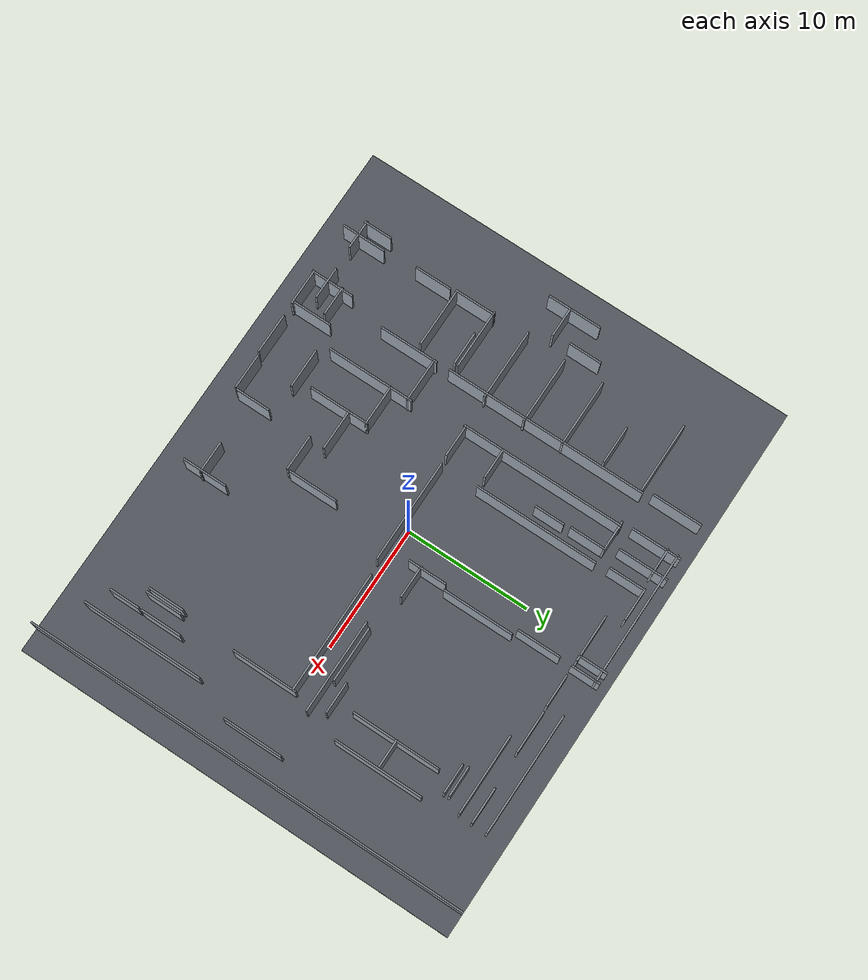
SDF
<?xml version="1.0"?>
<!-- Clean abstract wall model generated from the cleaned structural raster. -->
<sdf version="1.9">
  <world name="qianli_bupt_shahe_public_teaching_floor1_clean_abstract_v0_2">
    <physics name="default" type="ignored"><max_step_size>0.005</max_step_size><real_time_factor>1.0</real_time_factor></physics>
    <gravity>0 0 -9.81</gravity>
    <plugin filename="gz-sim-physics-system" name="gz::sim::systems::Physics" />
    <plugin filename="gz-sim-user-commands-system" name="gz::sim::systems::UserCommands" />
    <plugin filename="gz-sim-scene-broadcaster-system" name="gz::sim::systems::SceneBroadcaster" />
    <plugin filename="gz-sim-sensors-system" name="gz::sim::systems::Sensors"><render_engine>ogre2</render_engine></plugin>
    <scene><ambient>0.75 0.75 0.75 1</ambient><background>0.12 0.14 0.17 1</background></scene>
    <light name="sun" type="directional"><pose>0 0 8 0 0 0</pose><diffuse>0.8 0.8 0.8 1</diffuse><direction>-0.3 -0.3 -1</direction></light>
    <model name="floor">
      <static>true</static>
      <pose>0 0 -0.05 0 0 0</pose>
      <link name="link">
        <collision name="collision"><geometry><box><size>44.400 35.900 0.1</size></box></geometry></collision>
        <visual name="visual"><geometry><box><size>44.400 35.900 0.1</size></box></geometry>
          <material><ambient>0.35 0.37 0.40 1</ambient><diffuse>0.35 0.37 0.40 1</diffuse></material>
        </visual>
      </link>
    </model>
    <model name="wall_000">
      <static>true</static>
      <pose>20.300 0.010 1.400 0 0 1.570796</pose>
      <link name="link">
        <collision name="collision"><geometry><box><size>35.880 0.140 2.800</size></box></geometry></collision>
        <visual name="visual"><geometry><box><size>35.880 0.140 2.800</size></box></geometry>
          <material><ambient>0.55 0.58 0.62 1</ambient><diffuse>0.55 0.58 0.62 1</diffuse></material>
        </visual>
      </link>
    </model>
    <model name="wall_001">
      <static>true</static>
      <pose>-10.910 4.310 1.400 0 0 1.570796</pose>
      <link name="link">
        <collision name="collision"><geometry><box><size>16.280 0.140 2.800</size></box></geometry></collision>
        <visual name="visual"><geometry><box><size>16.280 0.140 2.800</size></box></geometry>
          <material><ambient>0.55 0.58 0.62 1</ambient><diffuse>0.55 0.58 0.62 1</diffuse></material>
        </visual>
      </link>
    </model>
    <model name="wall_002">
      <static>true</static>
      <pose>-8.090 5.890 1.400 0 0 1.570796</pose>
      <link name="link">
        <collision name="collision"><geometry><box><size>13.200 0.140 2.800</size></box></geometry></collision>
        <visual name="visual"><geometry><box><size>13.200 0.140 2.800</size></box></geometry>
          <material><ambient>0.55 0.58 0.62 1</ambient><diffuse>0.55 0.58 0.62 1</diffuse></material>
        </visual>
      </link>
    </model>
    <model name="wall_003">
      <static>true</static>
      <pose>-3.170 16.890 1.400 0 0 0.000000</pose>
      <link name="link">
        <collision name="collision"><geometry><box><size>10.740 0.140 2.800</size></box></geometry></collision>
        <visual name="visual"><geometry><box><size>10.740 0.140 2.800</size></box></geometry>
          <material><ambient>0.55 0.58 0.62 1</ambient><diffuse>0.55 0.58 0.62 1</diffuse></material>
        </visual>
      </link>
    </model>
    <model name="wall_004">
      <static>true</static>
      <pose>-4.890 7.460 1.400 0 0 1.570796</pose>
      <link name="link">
        <collision name="collision"><geometry><box><size>9.900 0.140 2.800</size></box></geometry></collision>
        <visual name="visual"><geometry><box><size>9.900 0.140 2.800</size></box></geometry>
          <material><ambient>0.55 0.58 0.62 1</ambient><diffuse>0.55 0.58 0.62 1</diffuse></material>
        </visual>
      </link>
    </model>
    <model name="wall_005">
      <static>true</static>
      <pose>9.340 -0.170 1.400 0 0 0.000000</pose>
      <link name="link">
        <collision name="collision"><geometry><box><size>9.800 0.140 2.800</size></box></geometry></collision>
        <visual name="visual"><geometry><box><size>9.800 0.140 2.800</size></box></geometry>
          <material><ambient>0.55 0.58 0.62 1</ambient><diffuse>0.55 0.58 0.62 1</diffuse></material>
        </visual>
      </link>
    </model>
    <model name="wall_006">
      <static>true</static>
      <pose>17.070 -10.820 1.400 0 0 1.570796</pose>
      <link name="link">
        <collision name="collision"><geometry><box><size>9.740 0.140 2.800</size></box></geometry></collision>
        <visual name="visual"><geometry><box><size>9.740 0.140 2.800</size></box></geometry>
          <material><ambient>0.55 0.58 0.62 1</ambient><diffuse>0.55 0.58 0.62 1</diffuse></material>
        </visual>
      </link>
    </model>
    <model name="wall_007">
      <static>true</static>
      <pose>10.150 16.330 1.400 0 0 0.000000</pose>
      <link name="link">
        <collision name="collision"><geometry><box><size>9.620 0.140 2.800</size></box></geometry></collision>
        <visual name="visual"><geometry><box><size>9.620 0.140 2.800</size></box></geometry>
          <material><ambient>0.55 0.58 0.62 1</ambient><diffuse>0.55 0.58 0.62 1</diffuse></material>
        </visual>
      </link>
    </model>
    <model name="wall_008">
      <static>true</static>
      <pose>-0.780 -0.470 1.400 0 0 0.000000</pose>
      <link name="link">
        <collision name="collision"><geometry><box><size>8.240 0.140 2.800</size></box></geometry></collision>
        <visual name="visual"><geometry><box><size>8.240 0.140 2.800</size></box></geometry>
          <material><ambient>0.55 0.58 0.62 1</ambient><diffuse>0.55 0.58 0.62 1</diffuse></material>
        </visual>
      </link>
    </model>
    <model name="wall_009">
      <static>true</static>
      <pose>11.140 1.430 1.400 0 0 0.000000</pose>
      <link name="link">
        <collision name="collision"><geometry><box><size>7.480 0.140 2.800</size></box></geometry></collision>
        <visual name="visual"><geometry><box><size>7.480 0.140 2.800</size></box></geometry>
          <material><ambient>0.55 0.58 0.62 1</ambient><diffuse>0.55 0.58 0.62 1</diffuse></material>
        </visual>
      </link>
    </model>
    <model name="wall_010">
      <static>true</static>
      <pose>15.400 7.730 1.400 0 0 1.570796</pose>
      <link name="link">
        <collision name="collision"><geometry><box><size>7.160 0.140 2.800</size></box></geometry></collision>
        <visual name="visual"><geometry><box><size>7.160 0.140 2.800</size></box></geometry>
          <material><ambient>0.55 0.58 0.62 1</ambient><diffuse>0.55 0.58 0.62 1</diffuse></material>
        </visual>
      </link>
    </model>
    <model name="wall_011">
      <static>true</static>
      <pose>13.140 7.700 1.400 0 0 1.570796</pose>
      <link name="link">
        <collision name="collision"><geometry><box><size>7.100 0.140 2.800</size></box></geometry></collision>
        <visual name="visual"><geometry><box><size>7.100 0.140 2.800</size></box></geometry>
          <material><ambient>0.55 0.58 0.62 1</ambient><diffuse>0.55 0.58 0.62 1</diffuse></material>
        </visual>
      </link>
    </model>
    <model name="wall_012">
      <static>true</static>
      <pose>-7.500 -8.240 1.400 0 0 1.570796</pose>
      <link name="link">
        <collision name="collision"><geometry><box><size>6.980 0.140 2.800</size></box></geometry></collision>
        <visual name="visual"><geometry><box><size>6.980 0.140 2.800</size></box></geometry>
          <material><ambient>0.55 0.58 0.62 1</ambient><diffuse>0.55 0.58 0.62 1</diffuse></material>
        </visual>
      </link>
    </model>
    <model name="wall_013">
      <static>true</static>
      <pose>11.700 14.040 1.400 0 0 0.000000</pose>
      <link name="link">
        <collision name="collision"><geometry><box><size>6.440 0.140 2.800</size></box></geometry></collision>
        <visual name="visual"><geometry><box><size>6.440 0.140 2.800</size></box></geometry>
          <material><ambient>0.55 0.58 0.62 1</ambient><diffuse>0.55 0.58 0.62 1</diffuse></material>
        </visual>
      </link>
    </model>
    <model name="wall_014">
      <static>true</static>
      <pose>-13.470 -0.640 1.400 0 0 0.000000</pose>
      <link name="link">
        <collision name="collision"><geometry><box><size>5.740 0.140 2.800</size></box></geometry></collision>
        <visual name="visual"><geometry><box><size>5.740 0.140 2.800</size></box></geometry>
          <material><ambient>0.55 0.58 0.62 1</ambient><diffuse>0.55 0.58 0.62 1</diffuse></material>
        </visual>
      </link>
    </model>
    <model name="wall_015">
      <static>true</static>
      <pose>2.560 7.480 1.400 0 0 1.570796</pose>
      <link name="link">
        <collision name="collision"><geometry><box><size>5.700 0.140 2.800</size></box></geometry></collision>
        <visual name="visual"><geometry><box><size>5.700 0.140 2.800</size></box></geometry>
          <material><ambient>0.55 0.58 0.62 1</ambient><diffuse>0.55 0.58 0.62 1</diffuse></material>
        </visual>
      </link>
    </model>
    <model name="wall_016">
      <static>true</static>
      <pose>-13.840 12.260 1.400 0 0 0.000000</pose>
      <link name="link">
        <collision name="collision"><geometry><box><size>5.640 0.140 2.800</size></box></geometry></collision>
        <visual name="visual"><geometry><box><size>5.640 0.140 2.800</size></box></geometry>
          <material><ambient>0.55 0.58 0.62 1</ambient><diffuse>0.55 0.58 0.62 1</diffuse></material>
        </visual>
      </link>
    </model>
    <model name="wall_017">
      <static>true</static>
      <pose>-13.360 2.630 1.400 0 0 0.000000</pose>
      <link name="link">
        <collision name="collision"><geometry><box><size>5.360 0.140 2.800</size></box></geometry></collision>
        <visual name="visual"><geometry><box><size>5.360 0.140 2.800</size></box></geometry>
          <material><ambient>0.55 0.58 0.62 1</ambient><diffuse>0.55 0.58 0.62 1</diffuse></material>
        </visual>
      </link>
    </model>
    <model name="wall_018">
      <static>true</static>
      <pose>-13.470 5.790 1.400 0 0 0.000000</pose>
      <link name="link">
        <collision name="collision"><geometry><box><size>5.340 0.140 2.800</size></box></geometry></collision>
        <visual name="visual"><geometry><box><size>5.340 0.140 2.800</size></box></geometry>
          <material><ambient>0.55 0.58 0.62 1</ambient><diffuse>0.55 0.58 0.62 1</diffuse></material>
        </visual>
      </link>
    </model>
    <model name="wall_019">
      <static>true</static>
      <pose>14.170 -2.530 1.400 0 0 1.570796</pose>
      <link name="link">
        <collision name="collision"><geometry><box><size>5.240 0.140 2.800</size></box></geometry></collision>
        <visual name="visual"><geometry><box><size>5.240 0.140 2.800</size></box></geometry>
          <material><ambient>0.55 0.58 0.62 1</ambient><diffuse>0.55 0.58 0.62 1</diffuse></material>
        </visual>
      </link>
    </model>
    <model name="wall_020">
      <static>true</static>
      <pose>-13.850 -3.470 1.400 0 0 0.000000</pose>
      <link name="link">
        <collision name="collision"><geometry><box><size>4.860 0.140 2.800</size></box></geometry></collision>
        <visual name="visual"><geometry><box><size>4.860 0.140 2.800</size></box></geometry>
          <material><ambient>0.55 0.58 0.62 1</ambient><diffuse>0.55 0.58 0.62 1</diffuse></material>
        </visual>
      </link>
    </model>
    <model name="wall_021">
      <static>true</static>
      <pose>-4.390 -8.850 1.400 0 0 1.570796</pose>
      <link name="link">
        <collision name="collision"><geometry><box><size>4.840 0.140 2.800</size></box></geometry></collision>
        <visual name="visual"><geometry><box><size>4.840 0.140 2.800</size></box></geometry>
          <material><ambient>0.55 0.58 0.62 1</ambient><diffuse>0.55 0.58 0.62 1</diffuse></material>
        </visual>
      </link>
    </model>
    <model name="wall_022">
      <static>true</static>
      <pose>18.410 -0.630 1.400 0 0 1.570796</pose>
      <link name="link">
        <collision name="collision"><geometry><box><size>4.800 0.140 2.800</size></box></geometry></collision>
        <visual name="visual"><geometry><box><size>4.800 0.140 2.800</size></box></geometry>
          <material><ambient>0.55 0.58 0.62 1</ambient><diffuse>0.55 0.58 0.62 1</diffuse></material>
        </visual>
      </link>
    </model>
    <model name="wall_023">
      <static>true</static>
      <pose>-13.720 -6.570 1.400 0 0 0.000000</pose>
      <link name="link">
        <collision name="collision"><geometry><box><size>4.760 0.140 2.800</size></box></geometry></collision>
        <visual name="visual"><geometry><box><size>4.760 0.140 2.800</size></box></geometry>
          <material><ambient>0.55 0.58 0.62 1</ambient><diffuse>0.55 0.58 0.62 1</diffuse></material>
        </visual>
      </link>
    </model>
    <model name="wall_024">
      <static>true</static>
      <pose>-10.850 -7.210 1.400 0 0 1.570796</pose>
      <link name="link">
        <collision name="collision"><geometry><box><size>4.760 0.140 2.800</size></box></geometry></collision>
        <visual name="visual"><geometry><box><size>4.760 0.140 2.800</size></box></geometry>
          <material><ambient>0.55 0.58 0.62 1</ambient><diffuse>0.55 0.58 0.62 1</diffuse></material>
        </visual>
      </link>
    </model>
    <model name="wall_025">
      <static>true</static>
      <pose>9.870 1.820 1.400 0 0 0.000000</pose>
      <link name="link">
        <collision name="collision"><geometry><box><size>4.420 0.140 2.800</size></box></geometry></collision>
        <visual name="visual"><geometry><box><size>4.420 0.140 2.800</size></box></geometry>
          <material><ambient>0.55 0.58 0.62 1</ambient><diffuse>0.55 0.58 0.62 1</diffuse></material>
        </visual>
      </link>
    </model>
    <model name="wall_026">
      <static>true</static>
      <pose>-19.440 1.290 1.400 0 0 1.570796</pose>
      <link name="link">
        <collision name="collision"><geometry><box><size>4.360 0.140 2.800</size></box></geometry></collision>
        <visual name="visual"><geometry><box><size>4.360 0.140 2.800</size></box></geometry>
          <material><ambient>0.55 0.58 0.62 1</ambient><diffuse>0.55 0.58 0.62 1</diffuse></material>
        </visual>
      </link>
    </model>
    <model name="wall_027">
      <static>true</static>
      <pose>-11.240 15.110 1.400 0 0 1.570796</pose>
      <link name="link">
        <collision name="collision"><geometry><box><size>4.040 0.140 2.800</size></box></geometry></collision>
        <visual name="visual"><geometry><box><size>4.040 0.140 2.800</size></box></geometry>
          <material><ambient>0.55 0.58 0.62 1</ambient><diffuse>0.55 0.58 0.62 1</diffuse></material>
        </visual>
      </link>
    </model>
    <model name="wall_028">
      <static>true</static>
      <pose>-6.630 15.210 1.400 0 0 1.570796</pose>
      <link name="link">
        <collision name="collision"><geometry><box><size>4.000 0.140 2.800</size></box></geometry></collision>
        <visual name="visual"><geometry><box><size>4.000 0.140 2.800</size></box></geometry>
          <material><ambient>0.55 0.58 0.62 1</ambient><diffuse>0.55 0.58 0.62 1</diffuse></material>
        </visual>
      </link>
    </model>
    <model name="wall_029">
      <static>true</static>
      <pose>-8.370 15.190 1.400 0 0 1.570796</pose>
      <link name="link">
        <collision name="collision"><geometry><box><size>3.960 0.140 2.800</size></box></geometry></collision>
        <visual name="visual"><geometry><box><size>3.960 0.140 2.800</size></box></geometry>
          <material><ambient>0.55 0.58 0.62 1</ambient><diffuse>0.55 0.58 0.62 1</diffuse></material>
        </visual>
      </link>
    </model>
    <model name="wall_030">
      <static>true</static>
      <pose>1.480 -7.110 1.400 0 0 1.570796</pose>
      <link name="link">
        <collision name="collision"><geometry><box><size>3.960 0.140 2.800</size></box></geometry></collision>
        <visual name="visual"><geometry><box><size>3.960 0.140 2.800</size></box></geometry>
          <material><ambient>0.55 0.58 0.62 1</ambient><diffuse>0.55 0.58 0.62 1</diffuse></material>
        </visual>
      </link>
    </model>
    <model name="wall_031">
      <static>true</static>
      <pose>-0.240 15.010 1.400 0 0 0.000000</pose>
      <link name="link">
        <collision name="collision"><geometry><box><size>3.760 0.140 2.800</size></box></geometry></collision>
        <visual name="visual"><geometry><box><size>3.760 0.140 2.800</size></box></geometry>
          <material><ambient>0.55 0.58 0.62 1</ambient><diffuse>0.55 0.58 0.62 1</diffuse></material>
        </visual>
      </link>
    </model>
    <model name="wall_032">
      <static>true</static>
      <pose>4.880 -14.000 1.400 0 0 1.570796</pose>
      <link name="link">
        <collision name="collision"><geometry><box><size>3.620 0.140 2.800</size></box></geometry></collision>
        <visual name="visual"><geometry><box><size>3.620 0.140 2.800</size></box></geometry>
          <material><ambient>0.55 0.58 0.62 1</ambient><diffuse>0.55 0.58 0.62 1</diffuse></material>
        </visual>
      </link>
    </model>
    <model name="wall_033">
      <static>true</static>
      <pose>-9.160 -5.080 1.400 0 0 0.000000</pose>
      <link name="link">
        <collision name="collision"><geometry><box><size>3.600 0.140 2.800</size></box></geometry></collision>
        <visual name="visual"><geometry><box><size>3.600 0.140 2.800</size></box></geometry>
          <material><ambient>0.55 0.58 0.62 1</ambient><diffuse>0.55 0.58 0.62 1</diffuse></material>
        </visual>
      </link>
    </model>
    <model name="wall_034">
      <static>true</static>
      <pose>-15.700 -14.340 1.400 0 0 1.570796</pose>
      <link name="link">
        <collision name="collision"><geometry><box><size>3.540 0.140 2.800</size></box></geometry></collision>
        <visual name="visual"><geometry><box><size>3.540 0.140 2.800</size></box></geometry>
          <material><ambient>0.55 0.58 0.62 1</ambient><diffuse>0.55 0.58 0.62 1</diffuse></material>
        </visual>
      </link>
    </model>
    <model name="wall_035">
      <static>true</static>
      <pose>2.070 12.190 1.400 0 0 1.570796</pose>
      <link name="link">
        <collision name="collision"><geometry><box><size>3.520 0.140 2.800</size></box></geometry></collision>
        <visual name="visual"><geometry><box><size>3.520 0.140 2.800</size></box></geometry>
          <material><ambient>0.55 0.58 0.62 1</ambient><diffuse>0.55 0.58 0.62 1</diffuse></material>
        </visual>
      </link>
    </model>
    <model name="wall_036">
      <static>true</static>
      <pose>-11.610 -14.310 1.400 0 0 1.570796</pose>
      <link name="link">
        <collision name="collision"><geometry><box><size>3.480 0.140 2.800</size></box></geometry></collision>
        <visual name="visual"><geometry><box><size>3.480 0.140 2.800</size></box></geometry>
          <material><ambient>0.55 0.58 0.62 1</ambient><diffuse>0.55 0.58 0.62 1</diffuse></material>
        </visual>
      </link>
    </model>
    <model name="wall_037">
      <static>true</static>
      <pose>7.530 15.040 1.400 0 0 0.000000</pose>
      <link name="link">
        <collision name="collision"><geometry><box><size>3.380 0.140 2.800</size></box></geometry></collision>
        <visual name="visual"><geometry><box><size>3.380 0.140 2.800</size></box></geometry>
          <material><ambient>0.55 0.58 0.62 1</ambient><diffuse>0.55 0.58 0.62 1</diffuse></material>
        </visual>
      </link>
    </model>
    <model name="wall_038">
      <static>true</static>
      <pose>-2.830 -8.010 1.400 0 0 0.000000</pose>
      <link name="link">
        <collision name="collision"><geometry><box><size>3.300 0.140 2.800</size></box></geometry></collision>
        <visual name="visual"><geometry><box><size>3.300 0.140 2.800</size></box></geometry>
          <material><ambient>0.55 0.58 0.62 1</ambient><diffuse>0.55 0.58 0.62 1</diffuse></material>
        </visual>
      </link>
    </model>
    <model name="wall_039">
      <static>true</static>
      <pose>-16.080 -5.020 1.400 0 0 1.570796</pose>
      <link name="link">
        <collision name="collision"><geometry><box><size>3.300 0.140 2.800</size></box></geometry></collision>
        <visual name="visual"><geometry><box><size>3.300 0.140 2.800</size></box></geometry>
          <material><ambient>0.55 0.58 0.62 1</ambient><diffuse>0.55 0.58 0.62 1</diffuse></material>
        </visual>
      </link>
    </model>
    <model name="wall_040">
      <static>true</static>
      <pose>-5.960 -6.550 1.400 0 0 0.000000</pose>
      <link name="link">
        <collision name="collision"><geometry><box><size>3.280 0.140 2.800</size></box></geometry></collision>
        <visual name="visual"><geometry><box><size>3.280 0.140 2.800</size></box></geometry>
          <material><ambient>0.55 0.58 0.62 1</ambient><diffuse>0.55 0.58 0.62 1</diffuse></material>
        </visual>
      </link>
    </model>
    <model name="wall_041">
      <static>true</static>
      <pose>15.370 -10.410 1.400 0 0 1.570796</pose>
      <link name="link">
        <collision name="collision"><geometry><box><size>3.280 0.140 2.800</size></box></geometry></collision>
        <visual name="visual"><geometry><box><size>3.280 0.140 2.800</size></box></geometry>
          <material><ambient>0.55 0.58 0.62 1</ambient><diffuse>0.55 0.58 0.62 1</diffuse></material>
        </visual>
      </link>
    </model>
    <model name="wall_042">
      <static>true</static>
      <pose>-6.110 -15.840 1.400 0 0 0.000000</pose>
      <link name="link">
        <collision name="collision"><geometry><box><size>3.260 0.140 2.800</size></box></geometry></collision>
        <visual name="visual"><geometry><box><size>3.260 0.140 2.800</size></box></geometry>
          <material><ambient>0.55 0.58 0.62 1</ambient><diffuse>0.55 0.58 0.62 1</diffuse></material>
        </visual>
      </link>
    </model>
    <model name="wall_043">
      <static>true</static>
      <pose>-5.260 -12.470 1.400 0 0 0.000000</pose>
      <link name="link">
        <collision name="collision"><geometry><box><size>3.160 0.140 2.800</size></box></geometry></collision>
        <visual name="visual"><geometry><box><size>3.160 0.140 2.800</size></box></geometry>
          <material><ambient>0.55 0.58 0.62 1</ambient><diffuse>0.55 0.58 0.62 1</diffuse></material>
        </visual>
      </link>
    </model>
    <model name="wall_044">
      <static>true</static>
      <pose>-8.960 -14.260 1.400 0 0 1.570796</pose>
      <link name="link">
        <collision name="collision"><geometry><box><size>3.100 0.140 2.800</size></box></geometry></collision>
        <visual name="visual"><geometry><box><size>3.100 0.140 2.800</size></box></geometry>
          <material><ambient>0.55 0.58 0.62 1</ambient><diffuse>0.55 0.58 0.62 1</diffuse></material>
        </visual>
      </link>
    </model>
    <model name="wall_045">
      <static>true</static>
      <pose>2.160 2.990 1.400 0 0 1.570796</pose>
      <link name="link">
        <collision name="collision"><geometry><box><size>3.080 0.140 2.800</size></box></geometry></collision>
        <visual name="visual"><geometry><box><size>3.080 0.140 2.800</size></box></geometry>
          <material><ambient>0.55 0.58 0.62 1</ambient><diffuse>0.55 0.58 0.62 1</diffuse></material>
        </visual>
      </link>
    </model>
    <model name="wall_046">
      <static>true</static>
      <pose>-12.800 8.960 1.400 0 0 0.000000</pose>
      <link name="link">
        <collision name="collision"><geometry><box><size>3.000 0.140 2.800</size></box></geometry></collision>
        <visual name="visual"><geometry><box><size>3.000 0.140 2.800</size></box></geometry>
          <material><ambient>0.55 0.58 0.62 1</ambient><diffuse>0.55 0.58 0.62 1</diffuse></material>
        </visual>
      </link>
    </model>
    <model name="wall_047">
      <static>true</static>
      <pose>-15.950 -8.510 1.400 0 0 1.570796</pose>
      <link name="link">
        <collision name="collision"><geometry><box><size>2.960 0.140 2.800</size></box></geometry></collision>
        <visual name="visual"><geometry><box><size>2.960 0.140 2.800</size></box></geometry>
          <material><ambient>0.55 0.58 0.62 1</ambient><diffuse>0.55 0.58 0.62 1</diffuse></material>
        </visual>
      </link>
    </model>
    <model name="wall_048">
      <static>true</static>
      <pose>-10.220 -15.910 1.400 0 0 0.000000</pose>
      <link name="link">
        <collision name="collision"><geometry><box><size>2.920 0.140 2.800</size></box></geometry></collision>
        <visual name="visual"><geometry><box><size>2.920 0.140 2.800</size></box></geometry>
          <material><ambient>0.55 0.58 0.62 1</ambient><diffuse>0.55 0.58 0.62 1</diffuse></material>
        </visual>
      </link>
    </model>
    <model name="wall_049">
      <static>true</static>
      <pose>13.510 15.120 1.400 0 0 0.000000</pose>
      <link name="link">
        <collision name="collision"><geometry><box><size>2.900 0.140 2.800</size></box></geometry></collision>
        <visual name="visual"><geometry><box><size>2.900 0.140 2.800</size></box></geometry>
          <material><ambient>0.55 0.58 0.62 1</ambient><diffuse>0.55 0.58 0.62 1</diffuse></material>
        </visual>
      </link>
    </model>
    <model name="wall_050">
      <static>true</static>
      <pose>14.110 -11.060 1.400 0 0 1.570796</pose>
      <link name="link">
        <collision name="collision"><geometry><box><size>2.900 0.140 2.800</size></box></geometry></collision>
        <visual name="visual"><geometry><box><size>2.900 0.140 2.800</size></box></geometry>
          <material><ambient>0.55 0.58 0.62 1</ambient><diffuse>0.55 0.58 0.62 1</diffuse></material>
        </visual>
      </link>
    </model>
    <model name="wall_051">
      <static>true</static>
      <pose>13.790 -11.070 1.400 0 0 1.570796</pose>
      <link name="link">
        <collision name="collision"><geometry><box><size>2.880 0.140 2.800</size></box></geometry></collision>
        <visual name="visual"><geometry><box><size>2.880 0.140 2.800</size></box></geometry>
          <material><ambient>0.55 0.58 0.62 1</ambient><diffuse>0.55 0.58 0.62 1</diffuse></material>
        </visual>
      </link>
    </model>
    <model name="wall_052">
      <static>true</static>
      <pose>0.030 -9.300 1.400 0 0 0.000000</pose>
      <link name="link">
        <collision name="collision"><geometry><box><size>2.860 0.140 2.800</size></box></geometry></collision>
        <visual name="visual"><geometry><box><size>2.860 0.140 2.800</size></box></geometry>
          <material><ambient>0.55 0.58 0.62 1</ambient><diffuse>0.55 0.58 0.62 1</diffuse></material>
        </visual>
      </link>
    </model>
    <model name="wall_053">
      <static>true</static>
      <pose>-2.850 -15.700 1.400 0 0 0.000000</pose>
      <link name="link">
        <collision name="collision"><geometry><box><size>2.860 0.140 2.800</size></box></geometry></collision>
        <visual name="visual"><geometry><box><size>2.860 0.140 2.800</size></box></geometry>
          <material><ambient>0.55 0.58 0.62 1</ambient><diffuse>0.55 0.58 0.62 1</diffuse></material>
        </visual>
      </link>
    </model>
    <model name="wall_054">
      <static>true</static>
      <pose>-6.060 10.980 1.400 0 0 1.570796</pose>
      <link name="link">
        <collision name="collision"><geometry><box><size>2.860 0.140 2.800</size></box></geometry></collision>
        <visual name="visual"><geometry><box><size>2.860 0.140 2.800</size></box></geometry>
          <material><ambient>0.55 0.58 0.62 1</ambient><diffuse>0.55 0.58 0.62 1</diffuse></material>
        </visual>
      </link>
    </model>
    <model name="wall_055">
      <static>true</static>
      <pose>-5.140 14.790 1.400 0 0 1.570796</pose>
      <link name="link">
        <collision name="collision"><geometry><box><size>2.840 0.140 2.800</size></box></geometry></collision>
        <visual name="visual"><geometry><box><size>2.840 0.140 2.800</size></box></geometry>
          <material><ambient>0.55 0.58 0.62 1</ambient><diffuse>0.55 0.58 0.62 1</diffuse></material>
        </visual>
      </link>
    </model>
    <model name="wall_056">
      <static>true</static>
      <pose>-1.360 -14.160 1.400 0 0 1.570796</pose>
      <link name="link">
        <collision name="collision"><geometry><box><size>2.780 0.140 2.800</size></box></geometry></collision>
        <visual name="visual"><geometry><box><size>2.780 0.140 2.800</size></box></geometry>
          <material><ambient>0.55 0.58 0.62 1</ambient><diffuse>0.55 0.58 0.62 1</diffuse></material>
        </visual>
      </link>
    </model>
    <model name="wall_057">
      <static>true</static>
      <pose>-12.830 -3.770 1.400 0 0 0.000000</pose>
      <link name="link">
        <collision name="collision"><geometry><box><size>2.660 0.140 2.800</size></box></geometry></collision>
        <visual name="visual"><geometry><box><size>2.660 0.140 2.800</size></box></geometry>
          <material><ambient>0.55 0.58 0.62 1</ambient><diffuse>0.55 0.58 0.62 1</diffuse></material>
        </visual>
      </link>
    </model>
    <model name="wall_058">
      <static>true</static>
      <pose>3.340 2.420 1.400 0 0 0.000000</pose>
      <link name="link">
        <collision name="collision"><geometry><box><size>2.640 0.140 2.800</size></box></geometry></collision>
        <visual name="visual"><geometry><box><size>2.640 0.140 2.800</size></box></geometry>
          <material><ambient>0.55 0.58 0.62 1</ambient><diffuse>0.55 0.58 0.62 1</diffuse></material>
        </visual>
      </link>
    </model>
    <model name="wall_059">
      <static>true</static>
      <pose>-17.270 3.570 1.400 0 0 1.570796</pose>
      <link name="link">
        <collision name="collision"><geometry><box><size>2.640 0.140 2.800</size></box></geometry></collision>
        <visual name="visual"><geometry><box><size>2.640 0.140 2.800</size></box></geometry>
          <material><ambient>0.55 0.58 0.62 1</ambient><diffuse>0.55 0.58 0.62 1</diffuse></material>
        </visual>
      </link>
    </model>
    <model name="wall_060">
      <static>true</static>
      <pose>-3.930 16.250 1.400 0 0 0.000000</pose>
      <link name="link">
        <collision name="collision"><geometry><box><size>2.620 0.140 2.800</size></box></geometry></collision>
        <visual name="visual"><geometry><box><size>2.620 0.140 2.800</size></box></geometry>
          <material><ambient>0.55 0.58 0.62 1</ambient><diffuse>0.55 0.58 0.62 1</diffuse></material>
        </visual>
      </link>
    </model>
    <model name="wall_061">
      <static>true</static>
      <pose>-11.410 -14.700 1.400 0 0 0.000000</pose>
      <link name="link">
        <collision name="collision"><geometry><box><size>2.620 0.140 2.800</size></box></geometry></collision>
        <visual name="visual"><geometry><box><size>2.620 0.140 2.800</size></box></geometry>
          <material><ambient>0.55 0.58 0.62 1</ambient><diffuse>0.55 0.58 0.62 1</diffuse></material>
        </visual>
      </link>
    </model>
    <model name="wall_062">
      <static>true</static>
      <pose>4.130 14.990 1.400 0 0 0.000000</pose>
      <link name="link">
        <collision name="collision"><geometry><box><size>2.580 0.140 2.800</size></box></geometry></collision>
        <visual name="visual"><geometry><box><size>2.580 0.140 2.800</size></box></geometry>
          <material><ambient>0.55 0.58 0.62 1</ambient><diffuse>0.55 0.58 0.62 1</diffuse></material>
        </visual>
      </link>
    </model>
    <model name="wall_063">
      <static>true</static>
      <pose>3.760 -14.280 1.400 0 0 0.000000</pose>
      <link name="link">
        <collision name="collision"><geometry><box><size>2.560 0.140 2.800</size></box></geometry></collision>
        <visual name="visual"><geometry><box><size>2.560 0.140 2.800</size></box></geometry>
          <material><ambient>0.55 0.58 0.62 1</ambient><diffuse>0.55 0.58 0.62 1</diffuse></material>
        </visual>
      </link>
    </model>
    <model name="wall_064">
      <static>true</static>
      <pose>12.970 2.640 1.400 0 0 0.000000</pose>
      <link name="link">
        <collision name="collision"><geometry><box><size>2.540 0.140 2.800</size></box></geometry></collision>
        <visual name="visual"><geometry><box><size>2.540 0.140 2.800</size></box></geometry>
          <material><ambient>0.55 0.58 0.62 1</ambient><diffuse>0.55 0.58 0.62 1</diffuse></material>
        </visual>
      </link>
    </model>
    <model name="wall_065">
      <static>true</static>
      <pose>-6.790 -0.550 1.400 0 0 0.000000</pose>
      <link name="link">
        <collision name="collision"><geometry><box><size>2.500 0.140 2.800</size></box></geometry></collision>
        <visual name="visual"><geometry><box><size>2.500 0.140 2.800</size></box></geometry>
          <material><ambient>0.55 0.58 0.62 1</ambient><diffuse>0.55 0.58 0.62 1</diffuse></material>
        </visual>
      </link>
    </model>
    <model name="wall_066">
      <static>true</static>
      <pose>15.370 -13.500 1.400 0 0 1.570796</pose>
      <link name="link">
        <collision name="collision"><geometry><box><size>2.460 0.140 2.800</size></box></geometry></collision>
        <visual name="visual"><geometry><box><size>2.460 0.140 2.800</size></box></geometry>
          <material><ambient>0.55 0.58 0.62 1</ambient><diffuse>0.55 0.58 0.62 1</diffuse></material>
        </visual>
      </link>
    </model>
    <model name="wall_067">
      <static>true</static>
      <pose>-7.200 12.360 1.400 0 0 0.000000</pose>
      <link name="link">
        <collision name="collision"><geometry><box><size>2.440 0.140 2.800</size></box></geometry></collision>
        <visual name="visual"><geometry><box><size>2.440 0.140 2.800</size></box></geometry>
          <material><ambient>0.55 0.58 0.62 1</ambient><diffuse>0.55 0.58 0.62 1</diffuse></material>
        </visual>
      </link>
    </model>
    <model name="wall_068">
      <static>true</static>
      <pose>13.070 12.820 1.400 0 0 0.000000</pose>
      <link name="link">
        <collision name="collision"><geometry><box><size>2.420 0.140 2.800</size></box></geometry></collision>
        <visual name="visual"><geometry><box><size>2.420 0.140 2.800</size></box></geometry>
          <material><ambient>0.55 0.58 0.62 1</ambient><diffuse>0.55 0.58 0.62 1</diffuse></material>
        </visual>
      </link>
    </model>
    <model name="wall_069">
      <static>true</static>
      <pose>-6.900 2.580 1.400 0 0 0.000000</pose>
      <link name="link">
        <collision name="collision"><geometry><box><size>2.400 0.140 2.800</size></box></geometry></collision>
        <visual name="visual"><geometry><box><size>2.400 0.140 2.800</size></box></geometry>
          <material><ambient>0.55 0.58 0.62 1</ambient><diffuse>0.55 0.58 0.62 1</diffuse></material>
        </visual>
      </link>
    </model>
    <model name="wall_070">
      <static>true</static>
      <pose>-18.260 0.920 1.400 0 0 0.000000</pose>
      <link name="link">
        <collision name="collision"><geometry><box><size>2.400 0.140 2.800</size></box></geometry></collision>
        <visual name="visual"><geometry><box><size>2.400 0.140 2.800</size></box></geometry>
          <material><ambient>0.55 0.58 0.62 1</ambient><diffuse>0.55 0.58 0.62 1</diffuse></material>
        </visual>
      </link>
    </model>
    <model name="wall_071">
      <static>true</static>
      <pose>-5.960 7.870 1.400 0 0 1.570796</pose>
      <link name="link">
        <collision name="collision"><geometry><box><size>2.400 0.140 2.800</size></box></geometry></collision>
        <visual name="visual"><geometry><box><size>2.400 0.140 2.800</size></box></geometry>
          <material><ambient>0.55 0.58 0.62 1</ambient><diffuse>0.55 0.58 0.62 1</diffuse></material>
        </visual>
      </link>
    </model>
    <model name="wall_072">
      <static>true</static>
      <pose>-15.710 -14.820 1.400 0 0 0.000000</pose>
      <link name="link">
        <collision name="collision"><geometry><box><size>2.380 0.140 2.800</size></box></geometry></collision>
        <visual name="visual"><geometry><box><size>2.380 0.140 2.800</size></box></geometry>
          <material><ambient>0.55 0.58 0.62 1</ambient><diffuse>0.55 0.58 0.62 1</diffuse></material>
        </visual>
      </link>
    </model>
    <model name="wall_073">
      <static>true</static>
      <pose>13.120 12.400 1.400 0 0 0.000000</pose>
      <link name="link">
        <collision name="collision"><geometry><box><size>2.360 0.140 2.800</size></box></geometry></collision>
        <visual name="visual"><geometry><box><size>2.360 0.140 2.800</size></box></geometry>
          <material><ambient>0.55 0.58 0.62 1</ambient><diffuse>0.55 0.58 0.62 1</diffuse></material>
        </visual>
      </link>
    </model>
    <model name="wall_074">
      <static>true</static>
      <pose>-10.580 -13.510 1.400 0 0 0.000000</pose>
      <link name="link">
        <collision name="collision"><geometry><box><size>2.360 0.140 2.800</size></box></geometry></collision>
        <visual name="visual"><geometry><box><size>2.360 0.140 2.800</size></box></geometry>
          <material><ambient>0.55 0.58 0.62 1</ambient><diffuse>0.55 0.58 0.62 1</diffuse></material>
        </visual>
      </link>
    </model>
    <model name="wall_075">
      <static>true</static>
      <pose>1.230 16.090 1.400 0 0 1.570796</pose>
      <link name="link">
        <collision name="collision"><geometry><box><size>2.360 0.140 2.800</size></box></geometry></collision>
        <visual name="visual"><geometry><box><size>2.360 0.140 2.800</size></box></geometry>
          <material><ambient>0.55 0.58 0.62 1</ambient><diffuse>0.55 0.58 0.62 1</diffuse></material>
        </visual>
      </link>
    </model>
    <model name="wall_076">
      <static>true</static>
      <pose>2.110 16.070 1.400 0 0 1.570796</pose>
      <link name="link">
        <collision name="collision"><geometry><box><size>2.360 0.140 2.800</size></box></geometry></collision>
        <visual name="visual"><geometry><box><size>2.360 0.140 2.800</size></box></geometry>
          <material><ambient>0.55 0.58 0.62 1</ambient><diffuse>0.55 0.58 0.62 1</diffuse></material>
        </visual>
      </link>
    </model>
    <model name="wall_077">
      <static>true</static>
      <pose>-16.760 -13.830 1.400 0 0 1.570796</pose>
      <link name="link">
        <collision name="collision"><geometry><box><size>2.320 0.140 2.800</size></box></geometry></collision>
        <visual name="visual"><geometry><box><size>2.320 0.140 2.800</size></box></geometry>
          <material><ambient>0.55 0.58 0.62 1</ambient><diffuse>0.55 0.58 0.62 1</diffuse></material>
        </visual>
      </link>
    </model>
    <model name="wall_078">
      <static>true</static>
      <pose>14.190 7.720 1.400 0 0 0.000000</pose>
      <link name="link">
        <collision name="collision"><geometry><box><size>2.260 0.140 2.800</size></box></geometry></collision>
        <visual name="visual"><geometry><box><size>2.260 0.140 2.800</size></box></geometry>
          <material><ambient>0.55 0.58 0.62 1</ambient><diffuse>0.55 0.58 0.62 1</diffuse></material>
        </visual>
      </link>
    </model>
    <model name="wall_079">
      <static>true</static>
      <pose>-7.430 16.070 1.400 0 0 0.000000</pose>
      <link name="link">
        <collision name="collision"><geometry><box><size>2.180 0.140 2.800</size></box></geometry></collision>
        <visual name="visual"><geometry><box><size>2.180 0.140 2.800</size></box></geometry>
          <material><ambient>0.55 0.58 0.62 1</ambient><diffuse>0.55 0.58 0.62 1</diffuse></material>
        </visual>
      </link>
    </model>
  </world>
</sdf>
